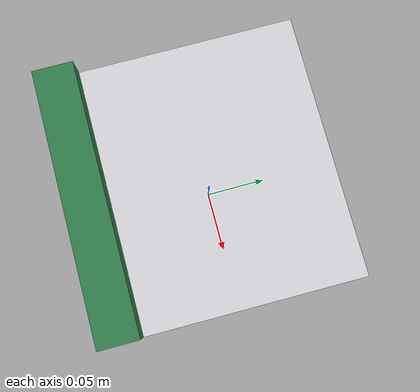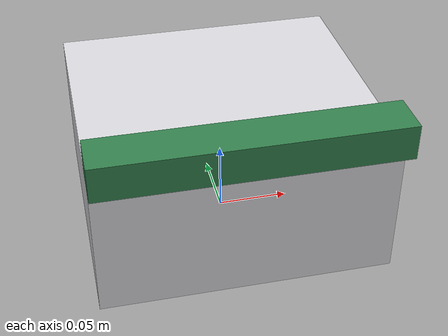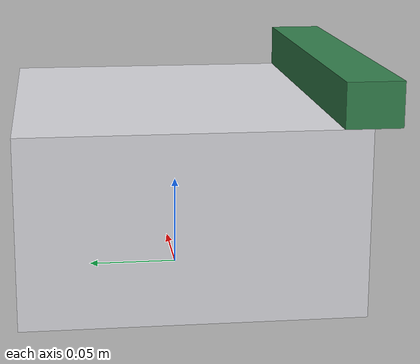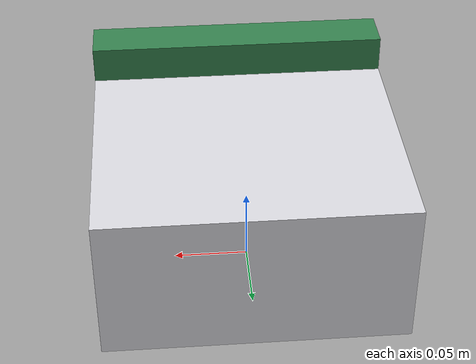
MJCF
<?xml version="1.0" encoding="utf-8"?>
<mujoco model="real_lab_usm_pfge">
  <compiler angle="radian" autolimits="true"/>
  <default>
    <default class="body"><geom contype="1" conaffinity="1"/></default>
  </default>
  <worldbody>
    <body name="base">
      <geom type="box" size="0.1 0.09 0.05" pos="0 0 0.05" rgba="0.85 0.85 0.87 1" class="body"/>
      <body name="lid" pos="0 -0.09 0.1">
        <joint name="lid_joint" type="hinge" axis="0 1 0" range="0 1.5" damping="0.6" frictionloss="0.25"/>
  <geom type="box" size="0.1 0.015 0.012" pos="0 0 0.012" rgba="0.2 0.5 0.3 1" class="body"/>
      </body>
    </body>
  </worldbody>
</mujoco>
